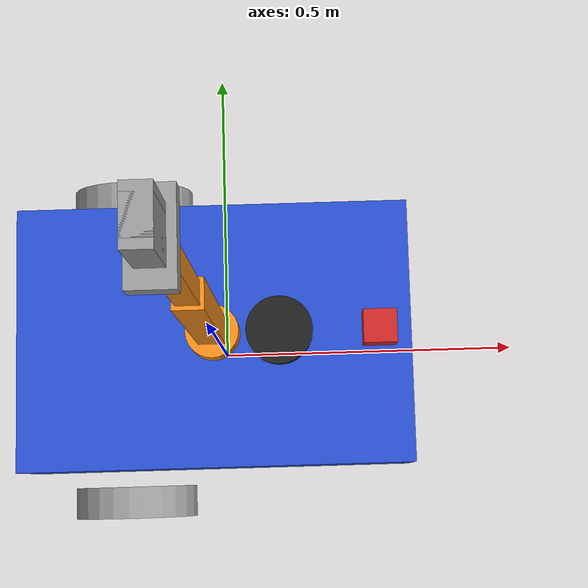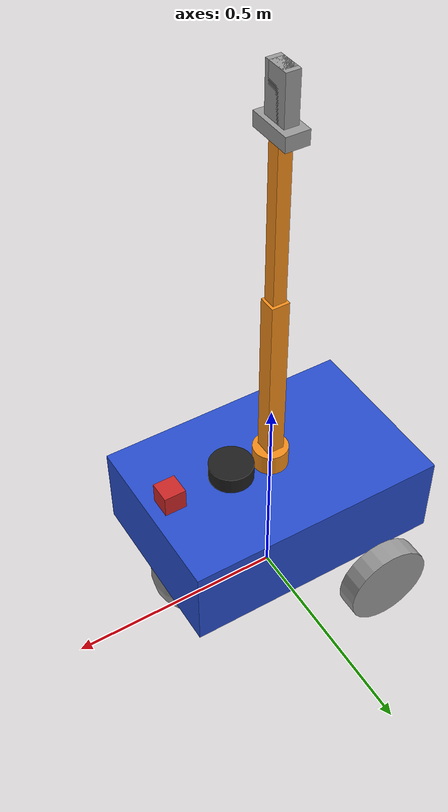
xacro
<?xml version="1.0"?>
<robot xmlns:xacro="http://www.ros.org/wiki/xacro" name="my_robot">

    <!-- Modular URDF components -->
    <xacro:include filename="common_properties.xacro" />
    <xacro:include filename="mobile_base.xacro" />
    <xacro:include filename="mobile_base_gazebo.xacro" />
    <xacro:include filename="arm.xacro" />
    <xacro:include filename="sensors.xacro" />

</robot>

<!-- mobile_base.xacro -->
<robot xmlns:xacro="http://www.ros.org/wiki/xacro">
<link name="base_footprint"/>
<joint name="base_joint" type="fixed"><parent link="base_footprint"/><child link="base_link"/><origin xyz="0 0 0.15"/></joint>
<link name="base_link">
<visual><origin xyz="0 0 0.1"/><geometry><box size="0.6 0.4 0.2"/></geometry><material name="blue"/></visual>
<collision><origin xyz="0 0 0.1"/><geometry><box size="0.6 0.4 0.2"/></geometry></collision>
<inertial><origin xyz="0 0 0.1"/><mass value="30.0"/><inertia ixx="1.0" ixy="0" ixz="0" iyy="1.0" iyz="0" izz="1.0"/></inertial>
</link>
<xacro:macro name="wheel" params="prefix y_reflect">
<link name="${prefix}_link">
<visual><origin xyz="0 0 0" rpy="${pi/2} 0 0"/><geometry><cylinder radius="0.1" length="0.05"/></geometry><material name="grey"/></visual>
<collision><origin xyz="0 0 0" rpy="${pi/2} 0 0"/><geometry><cylinder radius="0.1" length="0.05"/></geometry></collision>
<inertial><mass value="2.0"/><inertia ixx="0.1" ixy="0" ixz="0" iyy="0.1" iyz="0" izz="0.1"/></inertial>
</link>
<joint name="${prefix}_joint" type="continuous"><parent link="base_link"/><child link="${prefix}_link"/><origin xyz="-0.15 ${y_reflect*0.25} -0.05" rpy="0 0 0"/><axis xyz="0 1 0"/></joint>
</xacro:macro>
<xacro:wheel prefix="drivewhl_l" y_reflect="1"/>
<xacro:wheel prefix="drivewhl_r" y_reflect="-1"/>
<link name="caster">
<visual><geometry><sphere radius="0.1"/></geometry><material name="grey"/></visual>
<collision><geometry><sphere radius="0.1"/></geometry></collision>
<inertial><mass value="1.0"/><inertia ixx="0.1" ixy="0" ixz="0" iyy="0.1" iyz="0" izz="0.1"/></inertial>
</link>
<joint name="caster_joint" type="fixed"><parent link="base_link"/><child link="caster"/><origin xyz="0.2 0 -0.05"/></joint>
<gazebo reference="base_link"><self_collide>false</self_collide></gazebo>
<gazebo reference="caster"><mu1>0.01</mu1><mu2>0.01</mu2></gazebo>
</robot>

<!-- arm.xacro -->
<robot xmlns:xacro="http://www.ros.org/wiki/xacro">
<link name="arm_base">
<visual><origin xyz="0 0 0.025"/><geometry><cylinder length="0.05" radius="0.04"/></geometry><material name="orange"/></visual>
<collision><origin xyz="0 0 0.025"/><geometry><cylinder length="0.05" radius="0.04"/></geometry></collision>
<inertial><origin xyz="0 0 0.025"/><mass value="0.5"/><inertia ixx="0.001" ixy="0" ixz="0" iyy="0.001" iyz="0" izz="0.001"/></inertial>
</link>
<joint name="arm_base_joint" type="fixed"><parent link="base_link"/><child link="arm_base"/><origin xyz="0 0 0.2"/></joint>
<link name="link1">
<visual><origin xyz="0 0 0.2"/><geometry><box size="0.04 0.04 0.4"/></geometry><material name="orange"/></visual>
<collision><origin xyz="0 0 0.18"/><geometry><box size="0.04 0.04 0.36"/></geometry></collision>
<inertial><origin xyz="0 0 0.2"/><mass value="0.5"/><inertia ixx="0.01" ixy="0" ixz="0" iyy="0.01" iyz="0" izz="0.001"/></inertial>
</link>
<joint name="shoulder_joint" type="revolute"><parent link="arm_base"/><child link="link1"/><origin xyz="0 0 0.052"/><axis xyz="0 1 0"/><limit lower="-1.57" upper="1.57" effort="50" velocity="1.0"/><dynamics damping="0.1" friction="0.1"/></joint>
<link name="link2">
<visual><origin xyz="0 0 0.175"/><geometry><box size="0.03 0.03 0.35"/></geometry><material name="orange"/></visual>
<collision><origin xyz="0 0 0.175"/><geometry><box size="0.03 0.03 0.35"/></geometry></collision>
<inertial><origin xyz="0 0 0.175"/><mass value="0.4"/><inertia ixx="0.01" ixy="0" ixz="0" iyy="0.01" iyz="0" izz="0.001"/></inertial>
</link>
<joint name="elbow_joint" type="revolute"><parent link="link1"/><child link="link2"/><origin xyz="0 0 0.402"/><axis xyz="0 1 0"/><limit lower="-1.57" upper="1.57" effort="50" velocity="1.0"/><dynamics damping="0.1" friction="0.1"/></joint>
<link name="gripper_base">
<visual><geometry><box size="0.05 0.1 0.03"/></geometry><material name="grey"/></visual>
<collision><geometry><box size="0.05 0.1 0.03"/></geometry></collision>
<inertial><mass value="0.1"/><inertia ixx="0.001" ixy="0" ixz="0" iyy="0.001" iyz="0" izz="0.001"/></inertial>
</link>
<joint name="gripper_base_joint" type="fixed"><parent link="link2"/><child link="gripper_base"/><origin xyz="0 0 0.367"/></joint>
<link name="f1">
<visual><origin xyz="0 0 0.05"/><geometry><box size="0.03 0.05 0.1"/></geometry><material name="grey"/></visual>
<collision><origin xyz="0 0 0.05"/><geometry><box size="0.03 0.05 0.1"/></geometry></collision>
<inertial><origin xyz="0 0 0.05"/><mass value="0.5"/><inertia ixx="0.001" ixy="0" ixz="0" iyy="0.001" iyz="0" izz="0.001"/></inertial>
</link>
<joint name="left_finger_joint" type="prismatic"><parent link="gripper_base"/><child link="f1"/><origin xyz="0 0.005 0.015"/><axis xyz="0 1 0"/><limit lower="0" upper="0.25" effort="1000" velocity="0.5"/></joint>
<link name="f2">
<visual><origin xyz="0 0 0.05"/><geometry><box size="0.03 0.05 0.1"/></geometry><material name="grey"/></visual>
<collision><origin xyz="0 0 0.05"/><geometry><box size="0.03 0.05 0.1"/></geometry></collision>
<inertial><origin xyz="0 0 0.05"/><mass value="0.5"/><inertia ixx="0.001" ixy="0" ixz="0" iyy="0.001" iyz="0" izz="0.001"/></inertial>
</link>
<joint name="right_finger_joint" type="prismatic"><parent link="gripper_base"/><child link="f2"/><origin xyz="0 -0.005 0.015"/><axis xyz="0 -1 0"/><limit lower="0" upper="0.25" effort="1000" velocity="0.5"/></joint>
<gazebo reference="arm_base"><material>Gazebo/Orange</material><self_collide>false</self_collide></gazebo>
<gazebo reference="link1"><material>Gazebo/Orange</material><self_collide>false</self_collide></gazebo>
<gazebo reference="link2"><material>Gazebo/Orange</material><self_collide>false</self_collide></gazebo>
<gazebo reference="gripper_base"><material>Gazebo/Black</material><self_collide>false</self_collide></gazebo>
<gazebo reference="f1"><material>Gazebo/Grey</material><mu1>100.0</mu1><mu2>100.0</mu2><kp>1000000.0</kp><kd>1.0</kd><minDepth>0.01</minDepth><maxVel>0.1</maxVel></gazebo>
<gazebo reference="f2"><material>Gazebo/Grey</material><mu1>100.0</mu1><mu2>100.0</mu2><kp>1000000.0</kp><kd>1.0</kd><minDepth>0.01</minDepth><maxVel>0.1</maxVel></gazebo>
<ros2_control name="GazeboSystem" type="system">
<hardware><plugin>gazebo_ros2_control/GazeboSystem</plugin></hardware>
<joint name="shoulder_joint"><command_interface name="position"><param name="min">-1.57</param><param name="max">1.57</param></command_interface><state_interface name="position"/><state_interface name="velocity"/></joint>
<joint name="elbow_joint"><command_interface name="position"><param name="min">-1.57</param><param name="max">1.57</param></command_interface><state_interface name="position"/><state_interface name="velocity"/></joint>
<joint name="left_finger_joint"><command_interface name="position"><param name="min">0</param><param name="max">0.25</param></command_interface><state_interface name="position"/><state_interface name="velocity"/></joint>
<joint name="right_finger_joint"><command_interface name="position"><param name="min">0</param><param name="max">0.25</param></command_interface><state_interface name="position"/><state_interface name="velocity"/></joint>
</ros2_control>
<gazebo><plugin name="gazebo_ros2_control" filename="libgazebo_ros2_control.so"><parameters>$(find my_robot_bringup)/config/arm_controllers.yaml</parameters><robot_param>robot_description</robot_param><robot_param_node>robot_state_publisher</robot_param_node></plugin></gazebo>
</robot>

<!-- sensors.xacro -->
<robot xmlns:xacro="http://www.ros.org/wiki/xacro">
<link name="camera_link"><visual><origin xyz="0 0 0.025"/><geometry><box size="0.05 0.05 0.05"/></geometry><material name="Red"/></visual><collision><origin xyz="0 0 0.025"/><geometry><box size="0.05 0.05 0.05"/></geometry></collision><inertial><mass value="0.1"/><inertia ixx="0.001" ixy="0" ixz="0" iyy="0.001" iyz="0" izz="0.001"/></inertial></link>
<joint name="camera_joint" type="fixed"><parent link="base_link"/><child link="camera_link"/><origin xyz="0.25 0 0.21"/></joint>
<gazebo reference="camera_link"><material>Gazebo/Red</material><sensor name="camera_sensor" type="camera"><pose>0 0 0 0 0 0</pose><visualize>true</visualize><update_rate>10.0</update_rate><camera><horizontal_fov>1.396</horizontal_fov><image><width>640</width><height>480</height><format>R8G8B8</format></image><clip><near>0.02</near><far>300</far></clip></camera><plugin name="camera_controller" filename="libgazebo_ros_camera.so"><alwaysOn>true</alwaysOn><updateRate>0.0</updateRate><cameraName>camera</cameraName><imageTopicName>image_raw</imageTopicName><cameraInfoTopicName>camera_info</cameraInfoTopicName><frameName>camera_link</frameName></plugin></sensor></gazebo>
<link name="lidar_link"><visual><origin xyz="0 0 0.02"/><geometry><cylinder radius="0.05" length="0.04"/></geometry><material name="Black"/></visual><collision><origin xyz="0 0 0.02"/><geometry><cylinder radius="0.05" length="0.04"/></geometry></collision><inertial><mass value="0.1"/><inertia ixx="0.001" ixy="0" ixz="0" iyy="0.001" iyz="0" izz="0.001"/></inertial></link>
<joint name="lidar_joint" type="fixed"><parent link="base_link"/><child link="lidar_link"/><origin xyz="0.10 0 0.21"/></joint>
<gazebo reference="lidar_link"><sensor name="lidar" type="ray"><always_on>true</always_on><visualize>false</visualize><update_rate>10</update_rate><ray><scan><horizontal><samples>360</samples><resolution>1.0</resolution><min_angle>0</min_angle><max_angle>6.28</max_angle></horizontal></scan><range><min>0.12</min><max>12.0</max><resolution>0.02</resolution></range></ray><plugin name="scan" filename="libgazebo_ros_ray_sensor.so"><ros><remapping>~/out:=scan</remapping></ros><output_type>sensor_msgs/LaserScan</output_type><frame_name>lidar_link</frame_name></plugin></sensor></gazebo>
</robot>
